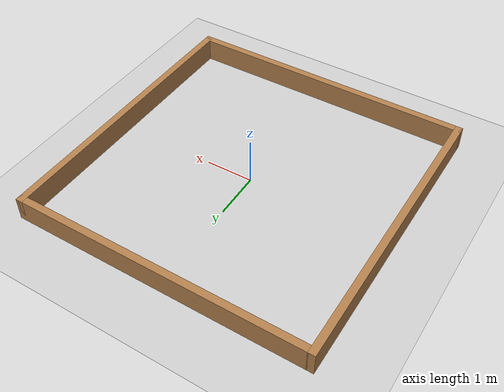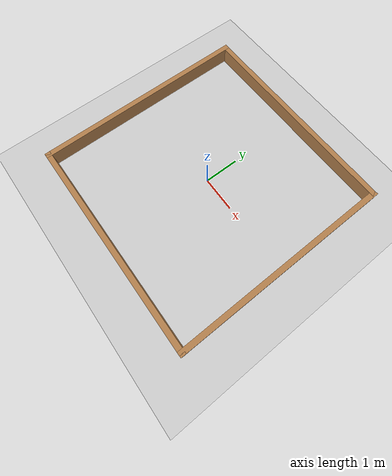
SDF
<sdf version="1.7">
 <world name="default">
  <plugin filename="gz-sim-physics-system" name="gz::sim::systems::Physics"/>
  <plugin filename="gz-sim-user-commands-system" name="gz::sim::systems::UserCommands"/>
  <plugin filename="gz-sim-scene-broadcaster-system" name="gz::sim::systems::SceneBroadcaster"/>
  <plugin filename="gz-sim-sensors-system" name="gz::sim::systems::Sensors">
   <render_engine>ogre2</render_engine>
  </plugin>
  <light name="sun" type="directional">
   <pose>0 0 10 0 -0 0</pose>
   <diffuse>0.8 0.8 0.8 1</diffuse>
   <specular>0.2 0.2 0.2 1</specular>
   <attenuation>
    <range>1000</range>
    <constant>0.9</constant>
    <linear>0.01</linear>
    <quadratic>0.001</quadratic>
   </attenuation>
   <direction>-0.5 0.1 -0.9</direction>
   <spot><inner_angle>0</inner_angle><outer_angle>0</outer_angle><falloff>0</falloff></spot>
  </light>
  <model name="ground_plane">
   <static>1</static>
   <link name="link">
    <collision name="collision">
     <geometry><plane><normal>0 0 1</normal><size>100 100</size></plane></geometry>
     <surface>
      <contact><collide_bitmask>65535</collide_bitmask></contact>
      <friction><ode><mu>100</mu><mu2>50</mu2></ode></friction>
     </surface>
    </collision>
    <visual name="visual">
     <cast_shadows>0</cast_shadows>
     <geometry><plane><normal>0 0 1</normal><size>100 100</size></plane></geometry>
     <material>
      <script><uri>file://media/materials/scripts/gazebo.material</uri><name>Gazebo/Grey</name></script>
     </material>
    </visual>
   </link>
  </model>
  <gravity>0 0 -9.8</gravity>
  <magnetic_field>6e-06 2.3e-05 -4.2e-05</magnetic_field>
  <atmosphere type="adiabatic"/>
  <physics type="ode">
   <max_step_size>0.001</max_step_size>
   <real_time_factor>1</real_time_factor>
   <real_time_update_rate>1000</real_time_update_rate>
  </physics>
  <scene><ambient>0.4 0.4 0.4 1</ambient><background>0.7 0.7 0.7 1</background><shadows>1</shadows></scene>
  <spherical_coordinates>
   <surface_model>EARTH_WGS84</surface_model>
   <latitude_deg>0</latitude_deg>
   <longitude_deg>0</longitude_deg>
   <elevation>0</elevation>
   <heading_deg>0</heading_deg>
  </spherical_coordinates>
  <model name="walls_erl2">
   <link name="Wall_18">
    <collision name="Wall_18_Collision">
     <geometry><box><size>6.3 0.15 0.5</size></box></geometry>
     <pose>0 0 0.25 0 -0 0</pose>
    </collision>
    <visual name="Wall_18_Visual">
     <pose>0 0 0.25 0 -0 0</pose>
     <geometry><box><size>6.3 0.15 0.5</size></box></geometry>
     <material>
      <script><uri>file://media/materials/scripts/gazebo.material</uri><name>Gazebo/Wood</name></script>
      <ambient>1 1 1 1</ambient>
     </material>
     <meta><layer>0</layer></meta>
    </visual>
    <pose>0 -3.075 0 0 -0 0</pose>
   </link>
   <link name="Wall_20">
    <collision name="Wall_20_Collision">
     <geometry><box><size>6.3 0.15 0.5</size></box></geometry>
     <pose>0 0 0.25 0 -0 0</pose>
    </collision>
    <visual name="Wall_20_Visual">
     <pose>0 0 0.25 0 -0 0</pose>
     <geometry><box><size>6.3 0.15 0.5</size></box></geometry>
     <material>
      <script><uri>file://media/materials/scripts/gazebo.material</uri><name>Gazebo/Wood</name></script>
      <ambient>1 1 1 1</ambient>
     </material>
     <meta><layer>0</layer></meta>
    </visual>
    <pose>-3.075 0 0 0 -0 1.5708</pose>
   </link>
   <link name="Wall_22">
    <collision name="Wall_22_Collision">
     <geometry><box><size>6.3 0.15 0.5</size></box></geometry>
     <pose>0 0 0.25 0 -0 0</pose>
    </collision>
    <visual name="Wall_22_Visual">
     <pose>0 0 0.25 0 -0 0</pose>
     <geometry><box><size>6.3 0.15 0.5</size></box></geometry>
     <material>
      <script><uri>file://media/materials/scripts/gazebo.material</uri><name>Gazebo/Wood</name></script>
      <ambient>1 1 1 1</ambient>
     </material>
     <meta><layer>0</layer></meta>
    </visual>
    <pose>0 3.075 0 0 -0 0</pose>
   </link>
   <link name="Wall_24">
    <collision name="Wall_24_Collision">
     <geometry><box><size>6.3 0.15 0.5</size></box></geometry>
     <pose>0 0 0.25 0 -0 0</pose>
    </collision>
    <visual name="Wall_24_Visual">
     <pose>0 0 0.25 0 -0 0</pose>
     <geometry><box><size>6.3 0.15 0.5</size></box></geometry>
     <material>
      <script><uri>file://media/materials/scripts/gazebo.material</uri><name>Gazebo/Wood</name></script>
      <ambient>1 1 1 1</ambient>
     </material>
     <meta><layer>0</layer></meta>
    </visual>
    <pose>3.075 0 0 0 -0 -1.5708</pose>
   </link>
   <static>1</static>
  </model>
 </world>
</sdf>
